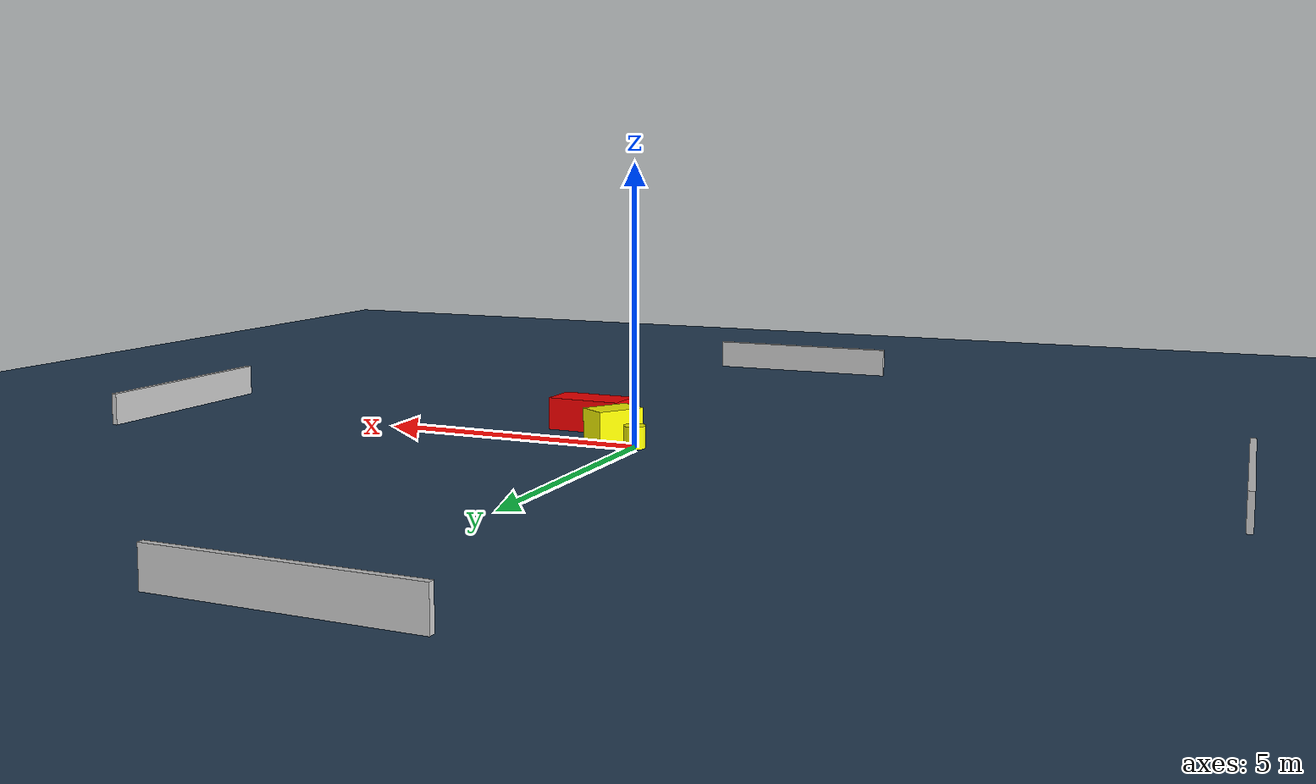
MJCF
<?xml version="1.0" ?>
<mujoco model="generated_environment">
  <option timestep="0.01" integrator="RK4" cone="elliptic"/>
  <default>
    <geom density="1"/>
  </default>
  <asset>
    <texture builtin="gradient" height="3072" name="skybox" rgb1="0.3 0.5 0.7" rgb2="0 0 0" type="skybox" width="512"/>
    <texture builtin="checker" height="300" name="groundplane" rgb1="0.2 0.3 0.4" rgb2="0.1 0.2 0.3" type="2d" width="300"/>
    <material name="groundplane" reflectance="0.2" texrepeat="5 5" texture="groundplane"/>
  </asset>
  <worldbody>
    <light dir="0 0 -1" directional="true" pos="0 0 1.5"/>
    <geom condim="3" friction="0.5 0.005 0.001" material="groundplane" name="floor" pos="0 0 0" size="0 0 0.05" type="plane"/>
    <body name="walls">
      <geom name="wall_1" condim="4" pos="-10.0 0.0 0.3" rgba="0.800000011920929 0.800000011920929 0.800000011920929 1.0" size="0.05 2.0 0.3" type="box"/>
      <geom name="wall_2" condim="4" pos="10.0 0.0 0.3" rgba="0.800000011920929 0.800000011920929 0.800000011920929 1.0" size="0.05 2.0 0.3" type="box"/>
      <geom name="wall_3" condim="4" pos="0.0 -10.0 0.3" rgba="0.800000011920929 0.800000011920929 0.800000011920929 1.0" size="2.0 0.05 0.3" type="box"/>
      <geom name="wall_4" condim="4" pos="0.0 10.0 0.3" rgba="0.800000011920929 0.800000011920929 0.800000011920929 1.0" size="2.0 0.05 0.3" type="box"/>
    </body>
    <body name="robot">
      <joint name="joint_x" type="slide" pos="0 0 0" axis="1 0 0"/>
      <joint name="joint_y" type="slide" pos="0 0 0" axis="0 1 0"/>
      <geom name="robot" type="cylinder" pos="0.0 0.0 0.2" size="0.2 0.2 0.0" mass="5.0" friction="1.0 0.005 0.0001" condim="4" rgba="1.0 1.0 0.0 1.0"/>
    </body>
    <body name="obstacle_1_movable">
      <geom name="obstacle_1_movable" condim="4" pos="0.6165332388345762 -0.43427222267021315 0.3" euler="0 0 326.5226944986573" friction="0.0 0.005 0.001" rgba="1.0 1.0 0.0 1.0" size="0.28889873528407994 0.4535386294925357 0.3" type="box" mass="0.1"/>
      <joint type="free"/>
    </body>
    <body name="obstacle_2_static">
      <geom name="obstacle_2_static" condim="4" pos="1.4581575314998556 -1.2950113351919885 0.3" euler="0 0 178.57368274945273" friction="0.0 0.005 0.001" rgba="1.0 0.0 0.0 1.0" size="0.7087935073617688 0.3647412043808424 0.3" type="box"/>
    </body>
  </worldbody>
  <actuator>
    <motor name="actuator_x" joint="joint_x" gear="1" ctrlrange="-1 1"/>
    <motor name="actuator_y" joint="joint_y" gear="1" ctrlrange="-1 1"/>
  </actuator>
</mujoco>
